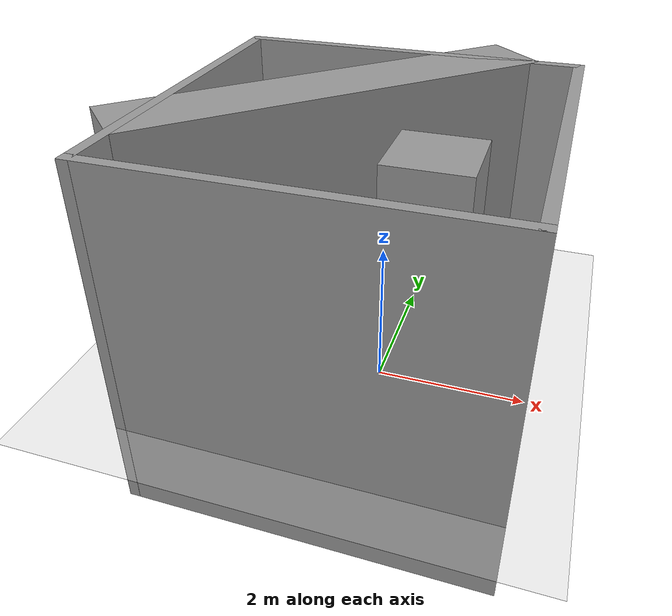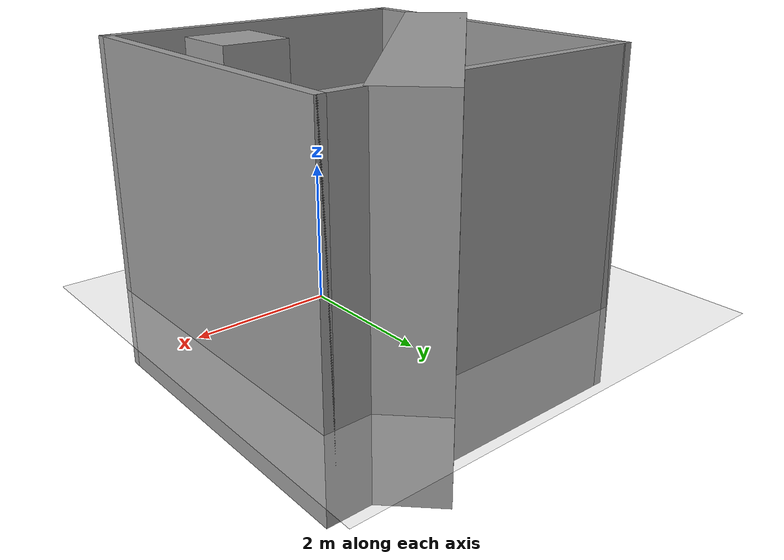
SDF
<sdf version="1.6">
 <world name="default">
  <include><uri>model://ground_plane</uri></include>
  <include><uri>model://sun</uri></include>
  <scene><shadows>false</shadows></scene>
  <physics type="ode">
   <real_time_update_rate>1000.0</real_time_update_rate>
   <max_step_size>0.001</max_step_size>
   <real_time_factor>1</real_time_factor>
   <ode>
    <solver>
     <type>quick</type>
     <iters>150</iters>
     <precon_iters>0</precon_iters>
     <sor>1.400000</sor>
     <use_dynamic_moi_rescaling>1</use_dynamic_moi_rescaling>
    </solver>
    <constraints>
     <cfm>0.00001</cfm>
     <erp>0.2</erp>
     <contact_max_correcting_vel>2000.000000</contact_max_correcting_vel>
     <contact_surface_layer>0.01000</contact_surface_layer>
    </constraints>
   </ode>
  </physics>
  <include><uri>model://env9</uri></include>
 </world>
</sdf>

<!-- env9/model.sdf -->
<sdf version='1.7'>
  <model name='env9'>
    <link name='link_0'>
      <inertial>
        <mass>1</mass>
        <inertia>
          <ixx>0.166667</ixx>
          <ixy>0</ixy>
          <ixz>0</ixz>
          <iyy>0.166667</iyy>
          <iyz>0</iyz>
          <izz>0.166667</izz>
        </inertia>
        <pose>0 0 0 0 -0 0</pose>
      </inertial>
      <pose>0.731205 -0.728617 1.25 0 -0 0</pose>
      <gravity>1</gravity>
      <self_collide>0</self_collide>
      <kinematic>0</kinematic>
      <enable_wind>0</enable_wind>
      <visual name='visual'>
        <pose>0 0 0 0 -0 0</pose>
        <geometry>
          <box>
            <size>1 1 5</size>
          </box>
        </geometry>
        <material>
          <lighting>1</lighting>
          <script>
            <uri>file://media/materials/scripts/gazebo.material</uri>
            <name>Gazebo/Grey</name>
          </script>
          <shader type='pixel'>
            <normal_map>__default__</normal_map>
          </shader>
          <ambient>0.3 0.3 0.3 1</ambient>
          <diffuse>0.7 0.7 0.7 1</diffuse>
          <specular>0.01 0.01 0.01 1</specular>
          <emissive>0 0 0 1</emissive>
        </material>
        <transparency>0</transparency>
        <cast_shadows>1</cast_shadows>
      </visual>
      <collision name='collision'>
        <laser_retro>0</laser_retro>
        <max_contacts>10</max_contacts>
        <pose>0 0 0 0 -0 0</pose>
        <geometry>
          <box>
            <size>1 1 5</size>
          </box>
        </geometry>
        <surface>
          <friction>
            <ode>
              <mu>1</mu>
              <mu2>1</mu2>
              <fdir1>0 0 0</fdir1>
              <slip1>0</slip1>
              <slip2>0</slip2>
            </ode>
            <torsional>
              <coefficient>1</coefficient>
              <patch_radius>0</patch_radius>
              <surface_radius>0</surface_radius>
              <use_patch_radius>1</use_patch_radius>
              <ode>
                <slip>0</slip>
              </ode>
            </torsional>
          </friction>
          <bounce>
            <restitution_coefficient>0</restitution_coefficient>
            <threshold>1e+06</threshold>
          </bounce>
          <contact>
            <collide_without_contact>0</collide_without_contact>
            <collide_without_contact_bitmask>1</collide_without_contact_bitmask>
            <collide_bitmask>1</collide_bitmask>
            <ode>
              <soft_cfm>0</soft_cfm>
              <soft_erp>0.2</soft_erp>
              <kp>1e+13</kp>
              <kd>1</kd>
              <max_vel>0.01</max_vel>
              <min_depth>0</min_depth>
            </ode>
            <bullet>
              <split_impulse>1</split_impulse>
              <split_impulse_penetration_threshold>-0.01</split_impulse_penetration_threshold>
              <soft_cfm>0</soft_cfm>
              <soft_erp>0.2</soft_erp>
              <kp>1e+13</kp>
              <kd>1</kd>
            </bullet>
          </contact>
        </surface>
      </collision>
    </link>
    <model name='weird_room'>
      <pose>-0.731206 0.728617 -1.25 0 -0 0</pose>
      <link name='Wall_0'>
        <collision name='Wall_0_Collision'>
          <geometry>
            <box>
              <size>5 0.15 5</size>
            </box>
          </geometry>
          <pose>0 0 2.5 0 -0 0</pose>
        </collision>
        <visual name='Wall_0_Visual'>
          <pose>0 0 2.5 0 -0 0</pose>
          <geometry>
            <box>
              <size>5 0.15 5</size>
            </box>
          </geometry>
          <material>
            <script>
              <uri>file://media/materials/scripts/gazebo.material</uri>
              <name>Gazebo/Grey</name>
            </script>
            <ambient>1 1 1 1</ambient>
          </material>
          <meta>
            <layer>0</layer>
          </meta>
        </visual>
        <pose>0.286553 -2.75882 0 0 -0 3.14159</pose>
      </link>
      <link name='Wall_1'>
        <collision name='Wall_1_Collision'>
          <geometry>
            <box>
              <size>5 0.15 5</size>
            </box>
          </geometry>
          <pose>0 0 2.5 0 -0 0</pose>
        </collision>
        <visual name='Wall_1_Visual'>
          <pose>0 0 2.5 0 -0 0</pose>
          <geometry>
            <box>
              <size>5 0.15 5</size>
            </box>
          </geometry>
          <material>
            <script>
              <uri>file://media/materials/scripts/gazebo.material</uri>
              <name>Gazebo/Grey</name>
            </script>
            <ambient>1 1 1 1</ambient>
          </material>
          <meta>
            <layer>0</layer>
          </meta>
        </visual>
        <pose>-2.13845 -0.33382 0 0 -0 1.5708</pose>
      </link>
      <link name='Wall_2'>
        <collision name='Wall_2_Collision'>
          <geometry>
            <box>
              <size>5 0.15 5</size>
            </box>
          </geometry>
          <pose>0 0 2.5 0 -0 0</pose>
        </collision>
        <visual name='Wall_2_Visual'>
          <pose>0 0 2.5 0 -0 0</pose>
          <geometry>
            <box>
              <size>5 0.15 5</size>
            </box>
          </geometry>
          <material>
            <script>
              <uri>file://media/materials/scripts/gazebo.material</uri>
              <name>Gazebo/Grey</name>
            </script>
            <ambient>1 1 1 1</ambient>
          </material>
          <meta>
            <layer>0</layer>
          </meta>
        </visual>
        <pose>0.286553 2.09118 0 0 -0 0</pose>
      </link>
      <link name='Wall_3'>
        <collision name='Wall_3_Collision'>
          <geometry>
            <box>
              <size>5 0.15 5</size>
            </box>
          </geometry>
          <pose>0 0 2.5 0 -0 0</pose>
        </collision>
        <visual name='Wall_3_Visual'>
          <pose>0 0 2.5 0 -0 0</pose>
          <geometry>
            <box>
              <size>5 0.15 5</size>
            </box>
          </geometry>
          <material>
            <script>
              <uri>file://media/materials/scripts/gazebo.material</uri>
              <name>Gazebo/Grey</name>
            </script>
            <ambient>1 1 1 1</ambient>
          </material>
          <meta>
            <layer>0</layer>
          </meta>
        </visual>
        <pose>2.71155 -0.33382 0 0 -0 -1.5708</pose>
      </link>
      <link name='Wall_5'>
        <collision name='Wall_5_Collision'>
          <geometry>
            <box>
              <size>6 1 5</size>
            </box>
          </geometry>
          <pose>0 0 2.5 0 -0 0</pose>
        </collision>
        <visual name='Wall_5_Visual'>
          <pose>0 0 2.5 0 -0 0</pose>
          <geometry>
            <box>
              <size>6 1 5</size>
            </box>
          </geometry>
          <material>
            <script>
              <uri>file://media/materials/scripts/gazebo.material</uri>
              <name>Gazebo/Grey</name>
            </script>
            <ambient>1 1 1 1</ambient>
          </material>
          <meta>
            <layer>0</layer>
          </meta>
        </visual>
        <pose>-0.31168 0.358947 0 0 -0 0.785398</pose>
      </link>
      <static>1</static>
    </model>
    <static>0</static>
    <allow_auto_disable>1</allow_auto_disable>
  </model>
</sdf>
